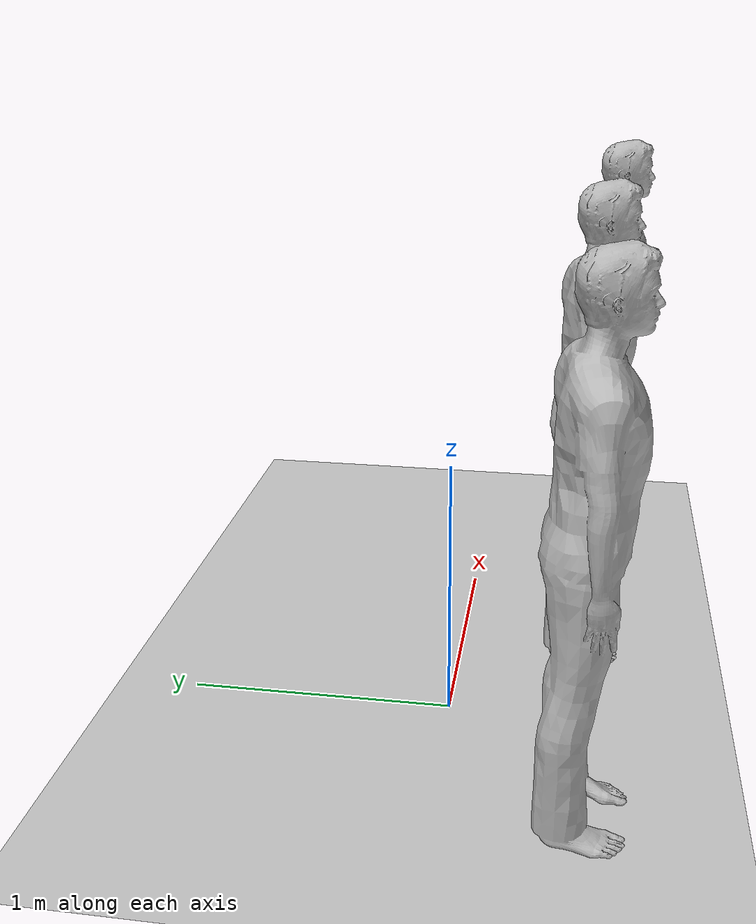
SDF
<sdf version="1.6">
 <world name="default">
  <light name="sun" type="directional">
   <pose>0 0 10 0 -0 0</pose>
   <diffuse>0.8 0.8 0.8 1</diffuse>
   <specular>0.2 0.2 0.2 1</specular>
   <attenuation>
    <range>1000</range>
    <constant>0.9</constant>
    <linear>0.01</linear>
    <quadratic>0.001</quadratic>
   </attenuation>
   <direction>-0.5 0.1 -0.9</direction>
  </light>
  <model name="ground_plane">
   <static>1</static>
   <link name="link">
    <collision name="collision">
     <geometry><plane><normal>0 0 1</normal><size>100 100</size></plane></geometry>
     <surface><friction><ode><mu>100</mu><mu2>50</mu2></ode></friction></surface>
    </collision>
    <visual name="visual">
     <cast_shadows>0</cast_shadows>
     <geometry><plane><normal>0 0 1</normal><size>100 100</size></plane></geometry>
     <material>
      <script><uri>file://media/materials/scripts/gazebo.material</uri><name>Gazebo/Grey</name></script>
     </material>
    </visual>
   </link>
  </model>
  <gravity>0 0 -9.8</gravity>
  <magnetic_field>6e-06 2.3e-05 -4.2e-05</magnetic_field>
  <atmosphere type="adiabatic"/>
  <physics name="default_physics" default="0" type="ode">
   <max_step_size>0.001</max_step_size>
   <real_time_factor>1</real_time_factor>
   <real_time_update_rate>1000</real_time_update_rate>
  </physics>
  <scene><ambient>0.4 0.4 0.4 1</ambient><background>0.7 0.7 0.7 1</background><shadows>1</shadows></scene>
  <spherical_coordinates>
   <surface_model>EARTH_WGS84</surface_model>
   <latitude_deg>0</latitude_deg>
   <longitude_deg>0</longitude_deg>
   <elevation>0</elevation>
   <heading_deg>0</heading_deg>
  </spherical_coordinates>
  <model name="person_standing">
   <link name="link">
    <inertial>
     <pose>0 -0.1 0.95 0 -0 0</pose>
     <mass>80</mass>
     <inertia><ixx>24.88</ixx><ixy>0</ixy><ixz>0</ixz><iyy>25.73</iyy><iyz>0</iyz><izz>2.48</izz></inertia>
    </inertial>
    <collision name="bottom">
     <pose>0 -0.1 0.01 0 -0 0</pose>
     <geometry><box><size>0.5 0.35 0.02</size></box></geometry>
    </collision>
    <collision name="person">
     <pose>0 0 0.02 0.04 -0 0</pose>
     <geometry><mesh><uri>model://person_standing/meshes/standing.dae</uri></mesh></geometry>
    </collision>
    <visual name="visual">
     <pose>0 0 0.02 0.04 -0 0</pose>
     <geometry><mesh><uri>model://person_standing/meshes/standing.dae</uri></mesh></geometry>
    </visual>
   </link>
   <pose>-0.569215 -0.403869 -0 2e-06 1e-06 -0.000131</pose>
  </model>
  <model name="person_standing_0">
   <link name="link">
    <inertial>
     <pose>0 -0.1 0.95 0 -0 0</pose>
     <mass>80</mass>
     <inertia><ixx>24.88</ixx><ixy>0</ixy><ixz>0</ixz><iyy>25.73</iyy><iyz>0</iyz><izz>2.48</izz></inertia>
    </inertial>
    <collision name="bottom">
     <pose>0 -0.1 0.01 0 -0 0</pose>
     <geometry><box><size>0.5 0.35 0.02</size></box></geometry>
    </collision>
    <collision name="person">
     <pose>0 0 0.02 0.04 -0 0</pose>
     <geometry><mesh><uri>model://person_standing/meshes/standing.dae</uri></mesh></geometry>
    </collision>
    <visual name="visual">
     <pose>0 0 0.02 0.04 -0 0</pose>
     <geometry><mesh><uri>model://person_standing/meshes/standing.dae</uri></mesh></geometry>
    </visual>
   </link>
   <pose>0.50133 -0.394647 -1e-06 -1e-06 1e-06 -0.000272</pose>
  </model>
  <model name="person_standing_1">
   <link name="link">
    <inertial>
     <pose>0 -0.1 0.95 0 -0 0</pose>
     <mass>80</mass>
     <inertia><ixx>24.88</ixx><ixy>0</ixy><ixz>0</ixz><iyy>25.73</iyy><iyz>0</iyz><izz>2.48</izz></inertia>
    </inertial>
    <collision name="bottom">
     <pose>0 -0.1 0.01 0 -0 0</pose>
     <geometry><box><size>0.5 0.35 0.02</size></box></geometry>
    </collision>
    <collision name="person">
     <pose>0 0 0.02 0.04 -0 0</pose>
     <geometry><mesh><uri>model://person_standing/meshes/standing.dae</uri></mesh></geometry>
    </collision>
    <visual name="visual">
     <pose>0 0 0.02 0.04 -0 0</pose>
     <geometry><mesh><uri>model://person_standing/meshes/standing.dae</uri></mesh></geometry>
    </visual>
   </link>
   <pose>1.66808 -0.483546 -0 0 1e-06 -0.000131</pose>
  </model>
 </world>
</sdf>
